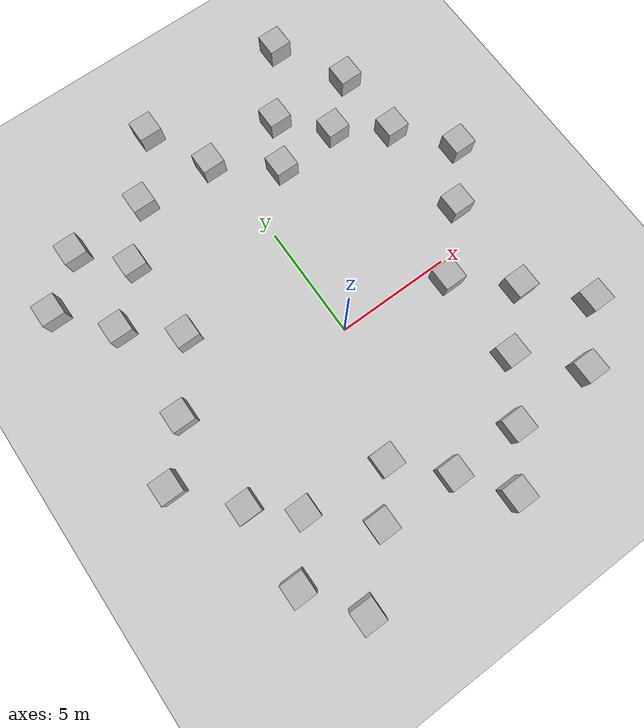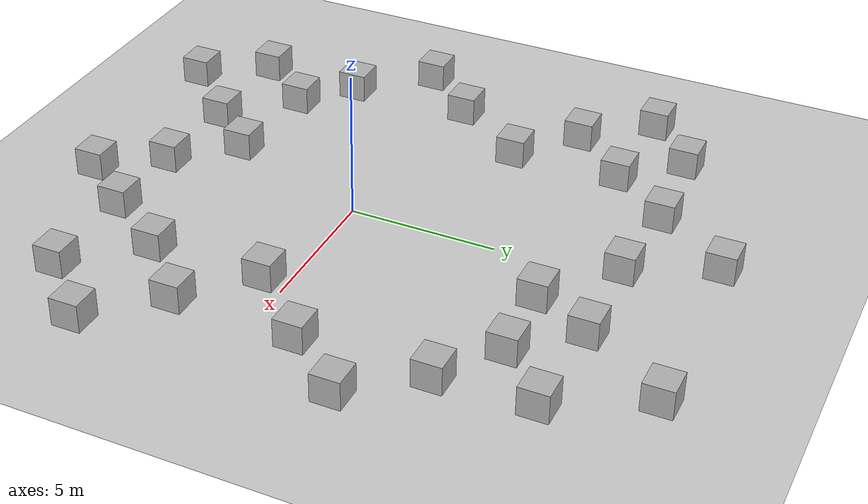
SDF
<sdf version='1.9'>
  <world name='simpel_world'>
    <physics name='1ms' type='ignored'>
      <max_step_size>0.001</max_step_size>
      <real_time_factor>1</real_time_factor>
      <real_time_update_rate>1000</real_time_update_rate>
    </physics>
    <plugin name='ignition::gazebo::systems::Physics' filename='libignition-gazebo-physics-system.so'/>
    <plugin name='ignition::gazebo::systems::UserCommands' filename='libignition-gazebo-user-commands-system.so'/>
    <plugin name='ignition::gazebo::systems::SceneBroadcaster' filename='libignition-gazebo-scene-broadcaster-system.so'/>
    <plugin name='ignition::gazebo::systems::Sensors' filename='libignition-gazebo-sensors-system.so'>
      <render_engine>ogre2</render_engine>
    </plugin>
    <gravity>0 0 -9.8</gravity>
    <magnetic_field>6e-06 2.3e-05 -4.2e-05</magnetic_field>
    <atmosphere type='adiabatic'/>
    <scene>
      <ambient>0.4 0.4 0.4 1</ambient>
      <background>0.7 0.7 0.7 1</background>
      <shadows>true</shadows>
    </scene>
    <model name='ground_plane'>
      <static>true</static>
      <link name='link'>
        <collision name='collision'>
          <geometry>
            <plane>
              <normal>0 0 1</normal>
              <size>1 1</size>
            </plane>
          </geometry>
          <surface>
            <friction>
              <ode/>
            </friction>
            <bounce/>
            <contact/>
          </surface>
        </collision>
        <visual name='visual'>
          <geometry>
            <plane>
              <normal>0 0 1</normal>
              <size>100 100</size>
            </plane>
          </geometry>
          <material>
            <ambient>0.8 0.8 0.8 1</ambient>
            <diffuse>0.8 0.8 0.8 1</diffuse>
            <specular>0.8 0.8 0.8 1</specular>
          </material>
        </visual>
        <pose>0 0 0 0 -0 0</pose>
        <inertial>
          <pose>0 0 0 0 -0 0</pose>
          <mass>1</mass>
          <inertia>
            <ixx>1</ixx>
            <ixy>0</ixy>
            <ixz>0</ixz>
            <iyy>1</iyy>
            <iyz>0</iyz>
            <izz>1</izz>
          </inertia>
        </inertial>
        <enable_wind>false</enable_wind>
      </link>
      <pose>0 0 0 0 -0 0</pose>
      <self_collide>false</self_collide>
    </model>
    <model name='box'>
      <pose>6.84875 6.00045 0.5 0 -0 0</pose>
      <link name='box_link'>
        <inertial>
          <inertia>
            <ixx>0.16666</ixx>
            <ixy>0</ixy>
            <ixz>0</ixz>
            <iyy>0.16666</iyy>
            <iyz>0</iyz>
            <izz>0.16666</izz>
          </inertia>
          <mass>1</mass>
          <pose>0 0 0 0 -0 0</pose>
        </inertial>
        <collision name='box_collision'>
          <geometry>
            <box>
              <size>1 1 1</size>
            </box>
          </geometry>
          <surface>
            <friction>
              <ode/>
            </friction>
            <bounce/>
            <contact/>
          </surface>
        </collision>
        <visual name='box_visual'>
          <geometry>
            <box>
              <size>1 1 1</size>
            </box>
          </geometry>
          <material>
            <ambient>0.3 0.3 0.3 1</ambient>
            <diffuse>0.7 0.7 0.7 1</diffuse>
            <specular>1 1 1 1</specular>
          </material>
        </visual>
        <pose>0 0 0 0 -0 0</pose>
        <enable_wind>false</enable_wind>
      </link>
      <static>false</static>
      <self_collide>false</self_collide>
    </model>
    <model name='box_0'>
      <pose>6.91688 1.58506 0.5 0 -0 0</pose>
      <link name='box_link'>
        <inertial>
          <inertia>
            <ixx>0.16666</ixx>
            <ixy>0</ixy>
            <ixz>0</ixz>
            <iyy>0.16666</iyy>
            <iyz>0</iyz>
            <izz>0.16666</izz>
          </inertia>
          <mass>1</mass>
          <pose>0 0 0 0 -0 0</pose>
        </inertial>
        <collision name='box_collision'>
          <geometry>
            <box>
              <size>1 1 1</size>
            </box>
          </geometry>
          <surface>
            <friction>
              <ode/>
            </friction>
            <bounce/>
            <contact/>
          </surface>
        </collision>
        <visual name='box_visual'>
          <geometry>
            <box>
              <size>1 1 1</size>
            </box>
          </geometry>
          <material>
            <ambient>0.3 0.3 0.3 1</ambient>
            <diffuse>0.7 0.7 0.7 1</diffuse>
            <specular>1 1 1 1</specular>
          </material>
        </visual>
        <pose>0 0 0 0 -0 0</pose>
        <enable_wind>false</enable_wind>
      </link>
      <static>false</static>
      <self_collide>false</self_collide>
    </model>
    <model name='box_1'>
      <pose>6.80581 -2.68726 0.5 0 -0 0</pose>
      <link name='box_link'>
        <inertial>
          <inertia>
            <ixx>0.16666</ixx>
            <ixy>0</ixy>
            <ixz>0</ixz>
            <iyy>0.16666</iyy>
            <iyz>0</iyz>
            <izz>0.16666</izz>
          </inertia>
          <mass>1</mass>
          <pose>0 0 0 0 -0 0</pose>
        </inertial>
        <collision name='box_collision'>
          <geometry>
            <box>
              <size>1 1 1</size>
            </box>
          </geometry>
          <surface>
            <friction>
              <ode/>
            </friction>
            <bounce/>
            <contact/>
          </surface>
        </collision>
        <visual name='box_visual'>
          <geometry>
            <box>
              <size>1 1 1</size>
            </box>
          </geometry>
          <material>
            <ambient>0.3 0.3 0.3 1</ambient>
            <diffuse>0.7 0.7 0.7 1</diffuse>
            <specular>1 1 1 1</specular>
          </material>
        </visual>
        <pose>0 0 0 0 -0 0</pose>
        <enable_wind>false</enable_wind>
      </link>
      <static>false</static>
      <self_collide>false</self_collide>
    </model>
    <model name='box_2'>
      <pose>6.80467 -6.92694 0.5 0 -0 0</pose>
      <link name='box_link'>
        <inertial>
          <inertia>
            <ixx>0.16666</ixx>
            <ixy>0</ixy>
            <ixz>0</ixz>
            <iyy>0.16666</iyy>
            <iyz>0</iyz>
            <izz>0.16666</izz>
          </inertia>
          <mass>1</mass>
          <pose>0 0 0 0 -0 0</pose>
        </inertial>
        <collision name='box_collision'>
          <geometry>
            <box>
              <size>1 1 1</size>
            </box>
          </geometry>
          <surface>
            <friction>
              <ode/>
            </friction>
            <bounce/>
            <contact/>
          </surface>
        </collision>
        <visual name='box_visual'>
          <geometry>
            <box>
              <size>1 1 1</size>
            </box>
          </geometry>
          <material>
            <ambient>0.3 0.3 0.3 1</ambient>
            <diffuse>0.7 0.7 0.7 1</diffuse>
            <specular>1 1 1 1</specular>
          </material>
        </visual>
        <pose>0 0 0 0 -0 0</pose>
        <enable_wind>false</enable_wind>
      </link>
      <static>false</static>
      <self_collide>false</self_collide>
    </model>
    <model name='box_3'>
      <pose>3.10253 -7.01485 0.5 0 -0 0</pose>
      <link name='box_link'>
        <inertial>
          <inertia>
            <ixx>0.16666</ixx>
            <ixy>0</ixy>
            <ixz>0</ixz>
            <iyy>0.16666</iyy>
            <iyz>0</iyz>
            <izz>0.16666</izz>
          </inertia>
          <mass>1</mass>
          <pose>0 0 0 0 -0 0</pose>
        </inertial>
        <collision name='box_collision'>
          <geometry>
            <box>
              <size>1 1 1</size>
            </box>
          </geometry>
          <surface>
            <friction>
              <ode/>
            </friction>
            <bounce/>
            <contact/>
          </surface>
        </collision>
        <visual name='box_visual'>
          <geometry>
            <box>
              <size>1 1 1</size>
            </box>
          </geometry>
          <material>
            <ambient>0.3 0.3 0.3 1</ambient>
            <diffuse>0.7 0.7 0.7 1</diffuse>
            <specular>1 1 1 1</specular>
          </material>
        </visual>
        <pose>0 0 0 0 -0 0</pose>
        <enable_wind>false</enable_wind>
      </link>
      <static>false</static>
      <self_collide>false</self_collide>
    </model>
    <model name='box_4'>
      <pose>-0.011968 -7.01081 0.5 0 -0 0</pose>
      <link name='box_link'>
        <inertial>
          <inertia>
            <ixx>0.16666</ixx>
            <ixy>0</ixy>
            <ixz>0</ixz>
            <iyy>0.16666</iyy>
            <iyz>0</iyz>
            <izz>0.16666</izz>
          </inertia>
          <mass>1</mass>
          <pose>0 0 0 0 -0 0</pose>
        </inertial>
        <collision name='box_collision'>
          <geometry>
            <box>
              <size>1 1 1</size>
            </box>
          </geometry>
          <surface>
            <friction>
              <ode/>
            </friction>
            <bounce/>
            <contact/>
          </surface>
        </collision>
        <visual name='box_visual'>
          <geometry>
            <box>
              <size>1 1 1</size>
            </box>
          </geometry>
          <material>
            <ambient>0.3 0.3 0.3 1</ambient>
            <diffuse>0.7 0.7 0.7 1</diffuse>
            <specular>1 1 1 1</specular>
          </material>
        </visual>
        <pose>0 0 0 0 -0 0</pose>
        <enable_wind>false</enable_wind>
      </link>
      <static>false</static>
      <self_collide>false</self_collide>
    </model>
    <model name='box_5'>
      <pose>-3.34492 -6.89747 0.5 0 -0 0</pose>
      <link name='box_link'>
        <inertial>
          <inertia>
            <ixx>0.16666</ixx>
            <ixy>0</ixy>
            <ixz>0</ixz>
            <iyy>0.16666</iyy>
            <iyz>0</iyz>
            <izz>0.16666</izz>
          </inertia>
          <mass>1</mass>
          <pose>0 0 0 0 -0 0</pose>
        </inertial>
        <collision name='box_collision'>
          <geometry>
            <box>
              <size>1 1 1</size>
            </box>
          </geometry>
          <surface>
            <friction>
              <ode/>
            </friction>
            <bounce/>
            <contact/>
          </surface>
        </collision>
        <visual name='box_visual'>
          <geometry>
            <box>
              <size>1 1 1</size>
            </box>
          </geometry>
          <material>
            <ambient>0.3 0.3 0.3 1</ambient>
            <diffuse>0.7 0.7 0.7 1</diffuse>
            <specular>1 1 1 1</specular>
          </material>
        </visual>
        <pose>0 0 0 0 -0 0</pose>
        <enable_wind>false</enable_wind>
      </link>
      <static>false</static>
      <self_collide>false</self_collide>
    </model>
    <model name='box_6'>
      <pose>-7.15741 -6.90628 0.5 0 -0 0</pose>
      <link name='box_link'>
        <inertial>
          <inertia>
            <ixx>0.16666</ixx>
            <ixy>0</ixy>
            <ixz>0</ixz>
            <iyy>0.16666</iyy>
            <iyz>0</iyz>
            <izz>0.16666</izz>
          </inertia>
          <mass>1</mass>
          <pose>0 0 0 0 -0 0</pose>
        </inertial>
        <collision name='box_collision'>
          <geometry>
            <box>
              <size>1 1 1</size>
            </box>
          </geometry>
          <surface>
            <friction>
              <ode/>
            </friction>
            <bounce/>
            <contact/>
          </surface>
        </collision>
        <visual name='box_visual'>
          <geometry>
            <box>
              <size>1 1 1</size>
            </box>
          </geometry>
          <material>
            <ambient>0.3 0.3 0.3 1</ambient>
            <diffuse>0.7 0.7 0.7 1</diffuse>
            <specular>1 1 1 1</specular>
          </material>
        </visual>
        <pose>0 0 0 0 -0 0</pose>
        <enable_wind>false</enable_wind>
      </link>
      <static>false</static>
      <self_collide>false</self_collide>
    </model>
    <model name='box_7'>
      <pose>-7.14534 -3.3841 0.5 0 -0 0</pose>
      <link name='box_link'>
        <inertial>
          <inertia>
            <ixx>0.16666</ixx>
            <ixy>0</ixy>
            <ixz>0</ixz>
            <iyy>0.16666</iyy>
            <iyz>0</iyz>
            <izz>0.16666</izz>
          </inertia>
          <mass>1</mass>
          <pose>0 0 0 0 -0 0</pose>
        </inertial>
        <collision name='box_collision'>
          <geometry>
            <box>
              <size>1 1 1</size>
            </box>
          </geometry>
          <surface>
            <friction>
              <ode/>
            </friction>
            <bounce/>
            <contact/>
          </surface>
        </collision>
        <visual name='box_visual'>
          <geometry>
            <box>
              <size>1 1 1</size>
            </box>
          </geometry>
          <material>
            <ambient>0.3 0.3 0.3 1</ambient>
            <diffuse>0.7 0.7 0.7 1</diffuse>
            <specular>1 1 1 1</specular>
          </material>
        </visual>
        <pose>0 0 0 0 -0 0</pose>
        <enable_wind>false</enable_wind>
      </link>
      <static>false</static>
      <self_collide>false</self_collide>
    </model>
    <model name='box_8'>
      <pose>-7.30717 0.876978 0.5 0 -0 0</pose>
      <link name='box_link'>
        <inertial>
          <inertia>
            <ixx>0.16666</ixx>
            <ixy>0</ixy>
            <ixz>0</ixz>
            <iyy>0.16666</iyy>
            <iyz>0</iyz>
            <izz>0.16666</izz>
          </inertia>
          <mass>1</mass>
          <pose>0 0 0 0 -0 0</pose>
        </inertial>
        <collision name='box_collision'>
          <geometry>
            <box>
              <size>1 1 1</size>
            </box>
          </geometry>
          <surface>
            <friction>
              <ode/>
            </friction>
            <bounce/>
            <contact/>
          </surface>
        </collision>
        <visual name='box_visual'>
          <geometry>
            <box>
              <size>1 1 1</size>
            </box>
          </geometry>
          <material>
            <ambient>0.3 0.3 0.3 1</ambient>
            <diffuse>0.7 0.7 0.7 1</diffuse>
            <specular>1 1 1 1</specular>
          </material>
        </visual>
        <pose>0 0 0 0 -0 0</pose>
        <enable_wind>false</enable_wind>
      </link>
      <static>false</static>
      <self_collide>false</self_collide>
    </model>
    <model name='box_9'>
      <pose>-7.42542 5.25312 0.5 0 -0 0</pose>
      <link name='box_link'>
        <inertial>
          <inertia>
            <ixx>0.16666</ixx>
            <ixy>0</ixy>
            <ixz>0</ixz>
            <iyy>0.16666</iyy>
            <iyz>0</iyz>
            <izz>0.16666</izz>
          </inertia>
          <mass>1</mass>
          <pose>0 0 0 0 -0 0</pose>
        </inertial>
        <collision name='box_collision'>
          <geometry>
            <box>
              <size>1 1 1</size>
            </box>
          </geometry>
          <surface>
            <friction>
              <ode/>
            </friction>
            <bounce/>
            <contact/>
          </surface>
        </collision>
        <visual name='box_visual'>
          <geometry>
            <box>
              <size>1 1 1</size>
            </box>
          </geometry>
          <material>
            <ambient>0.3 0.3 0.3 1</ambient>
            <diffuse>0.7 0.7 0.7 1</diffuse>
            <specular>1 1 1 1</specular>
          </material>
        </visual>
        <pose>0 0 0 0 -0 0</pose>
        <enable_wind>false</enable_wind>
      </link>
      <static>false</static>
      <self_collide>false</self_collide>
    </model>
    <model name='box_10'>
      <pose>-7.23199 9.08791 0.5 0 -0 0</pose>
      <link name='box_link'>
        <inertial>
          <inertia>
            <ixx>0.16666</ixx>
            <ixy>0</ixy>
            <ixz>0</ixz>
            <iyy>0.16666</iyy>
            <iyz>0</iyz>
            <izz>0.16666</izz>
          </inertia>
          <mass>1</mass>
          <pose>0 0 0 0 -0 0</pose>
        </inertial>
        <collision name='box_collision'>
          <geometry>
            <box>
              <size>1 1 1</size>
            </box>
          </geometry>
          <surface>
            <friction>
              <ode/>
            </friction>
            <bounce/>
            <contact/>
          </surface>
        </collision>
        <visual name='box_visual'>
          <geometry>
            <box>
              <size>1 1 1</size>
            </box>
          </geometry>
          <material>
            <ambient>0.3 0.3 0.3 1</ambient>
            <diffuse>0.7 0.7 0.7 1</diffuse>
            <specular>1 1 1 1</specular>
          </material>
        </visual>
        <pose>0 0 0 0 -0 0</pose>
        <enable_wind>false</enable_wind>
      </link>
      <static>false</static>
      <self_collide>false</self_collide>
    </model>
    <model name='box_11'>
      <pose>-3.77669 9.37251 0.5 0 -0 0</pose>
      <link name='box_link'>
        <inertial>
          <inertia>
            <ixx>0.16666</ixx>
            <ixy>0</ixy>
            <ixz>0</ixz>
            <iyy>0.16666</iyy>
            <iyz>0</iyz>
            <izz>0.16666</izz>
          </inertia>
          <mass>1</mass>
          <pose>0 0 0 0 -0 0</pose>
        </inertial>
        <collision name='box_collision'>
          <geometry>
            <box>
              <size>1 1 1</size>
            </box>
          </geometry>
          <surface>
            <friction>
              <ode/>
            </friction>
            <bounce/>
            <contact/>
          </surface>
        </collision>
        <visual name='box_visual'>
          <geometry>
            <box>
              <size>1 1 1</size>
            </box>
          </geometry>
          <material>
            <ambient>0.3 0.3 0.3 1</ambient>
            <diffuse>0.7 0.7 0.7 1</diffuse>
            <specular>1 1 1 1</specular>
          </material>
        </visual>
        <pose>0 0 0 0 -0 0</pose>
        <enable_wind>false</enable_wind>
      </link>
      <static>false</static>
      <self_collide>false</self_collide>
    </model>
    <model name='box_12'>
      <pose>-0.470923 9.17651 0.5 0 -0 0</pose>
      <link name='box_link'>
        <inertial>
          <inertia>
            <ixx>0.16666</ixx>
            <ixy>0</ixy>
            <ixz>0</ixz>
            <iyy>0.16666</iyy>
            <iyz>0</iyz>
            <izz>0.16666</izz>
          </inertia>
          <mass>1</mass>
          <pose>0 0 0 0 -0 0</pose>
        </inertial>
        <collision name='box_collision'>
          <geometry>
            <box>
              <size>1 1 1</size>
            </box>
          </geometry>
          <surface>
            <friction>
              <ode/>
            </friction>
            <bounce/>
            <contact/>
          </surface>
        </collision>
        <visual name='box_visual'>
          <geometry>
            <box>
              <size>1 1 1</size>
            </box>
          </geometry>
          <material>
            <ambient>0.3 0.3 0.3 1</ambient>
            <diffuse>0.7 0.7 0.7 1</diffuse>
            <specular>1 1 1 1</specular>
          </material>
        </visual>
        <pose>0 0 0 0 -0 0</pose>
        <enable_wind>false</enable_wind>
      </link>
      <static>false</static>
      <self_collide>false</self_collide>
    </model>
    <model name='box_13'>
      <pose>3.01344 9.2802 0.5 0 -0 0</pose>
      <link name='box_link'>
        <inertial>
          <inertia>
            <ixx>0.16666</ixx>
            <ixy>0</ixy>
            <ixz>0</ixz>
            <iyy>0.16666</iyy>
            <iyz>0</iyz>
            <izz>0.16666</izz>
          </inertia>
          <mass>1</mass>
          <pose>0 0 0 0 -0 0</pose>
        </inertial>
        <collision name='box_collision'>
          <geometry>
            <box>
              <size>1 1 1</size>
            </box>
          </geometry>
          <surface>
            <friction>
              <ode/>
            </friction>
            <bounce/>
            <contact/>
          </surface>
        </collision>
        <visual name='box_visual'>
          <geometry>
            <box>
              <size>1 1 1</size>
            </box>
          </geometry>
          <material>
            <ambient>0.3 0.3 0.3 1</ambient>
            <diffuse>0.7 0.7 0.7 1</diffuse>
            <specular>1 1 1 1</specular>
          </material>
        </visual>
        <pose>0 0 0 0 -0 0</pose>
        <enable_wind>false</enable_wind>
      </link>
      <static>false</static>
      <self_collide>false</self_collide>
    </model>
    <model name='box_14'>
      <pose>6.68779 9.16532 0.5 0 -0 0</pose>
      <link name='box_link'>
        <inertial>
          <inertia>
            <ixx>0.16666</ixx>
            <ixy>0</ixy>
            <ixz>0</ixz>
            <iyy>0.16666</iyy>
            <iyz>0</iyz>
            <izz>0.16666</izz>
          </inertia>
          <mass>1</mass>
          <pose>0 0 0 0 -0 0</pose>
        </inertial>
        <collision name='box_collision'>
          <geometry>
            <box>
              <size>1 1 1</size>
            </box>
          </geometry>
          <surface>
            <friction>
              <ode/>
            </friction>
            <bounce/>
            <contact/>
          </surface>
        </collision>
        <visual name='box_visual'>
          <geometry>
            <box>
              <size>1 1 1</size>
            </box>
          </geometry>
          <material>
            <ambient>0.3 0.3 0.3 1</ambient>
            <diffuse>0.7 0.7 0.7 1</diffuse>
            <specular>1 1 1 1</specular>
          </material>
        </visual>
        <pose>0 0 0 0 -0 0</pose>
        <enable_wind>false</enable_wind>
      </link>
      <static>false</static>
      <self_collide>false</self_collide>
    </model>
    <model name='box_15'>
      <pose>8.66865 3.71783 0.5 0 -0 0</pose>
      <link name='box_link'>
        <inertial>
          <inertia>
            <ixx>0.16666</ixx>
            <ixy>0</ixy>
            <ixz>0</ixz>
            <iyy>0.16666</iyy>
            <iyz>0</iyz>
            <izz>0.16666</izz>
          </inertia>
          <mass>1</mass>
          <pose>0 0 0 0 -0 0</pose>
        </inertial>
        <collision name='box_collision'>
          <geometry>
            <box>
              <size>1 1 1</size>
            </box>
          </geometry>
          <surface>
            <friction>
              <ode/>
            </friction>
            <bounce/>
            <contact/>
          </surface>
        </collision>
        <visual name='box_visual'>
          <geometry>
            <box>
              <size>1 1 1</size>
            </box>
          </geometry>
          <material>
            <ambient>0.3 0.3 0.3 1</ambient>
            <diffuse>0.7 0.7 0.7 1</diffuse>
            <specular>1 1 1 1</specular>
          </material>
        </visual>
        <pose>0 0 0 0 -0 0</pose>
        <enable_wind>false</enable_wind>
      </link>
      <static>false</static>
      <self_collide>false</self_collide>
    </model>
    <model name='box_16'>
      <pose>4.64194 -0.731137 0.5 0 -0 0</pose>
      <link name='box_link'>
        <inertial>
          <inertia>
            <ixx>0.16666</ixx>
            <ixy>0</ixy>
            <ixz>0</ixz>
            <iyy>0.16666</iyy>
            <iyz>0</iyz>
            <izz>0.16666</izz>
          </inertia>
          <mass>1</mass>
          <pose>0 0 0 0 -0 0</pose>
        </inertial>
        <collision name='box_collision'>
          <geometry>
            <box>
              <size>1 1 1</size>
            </box>
          </geometry>
          <surface>
            <friction>
              <ode/>
            </friction>
            <bounce/>
            <contact/>
          </surface>
        </collision>
        <visual name='box_visual'>
          <geometry>
            <box>
              <size>1 1 1</size>
            </box>
          </geometry>
          <material>
            <ambient>0.3 0.3 0.3 1</ambient>
            <diffuse>0.7 0.7 0.7 1</diffuse>
            <specular>1 1 1 1</specular>
          </material>
        </visual>
        <pose>0 0 0 0 -0 0</pose>
        <enable_wind>false</enable_wind>
      </link>
      <static>false</static>
      <self_collide>false</self_collide>
    </model>
    <model name='box_17'>
      <pose>8.87617 -4.87664 0.5 0 -0 0</pose>
      <link name='box_link'>
        <inertial>
          <inertia>
            <ixx>0.16666</ixx>
            <ixy>0</ixy>
            <ixz>0</ixz>
            <iyy>0.16666</iyy>
            <iyz>0</iyz>
            <izz>0.16666</izz>
          </inertia>
          <mass>1</mass>
          <pose>0 0 0 0 -0 0</pose>
        </inertial>
        <collision name='box_collision'>
          <geometry>
            <box>
              <size>1 1 1</size>
            </box>
          </geometry>
          <surface>
            <friction>
              <ode/>
            </friction>
            <bounce/>
            <contact/>
          </surface>
        </collision>
        <visual name='box_visual'>
          <geometry>
            <box>
              <size>1 1 1</size>
            </box>
          </geometry>
          <material>
            <ambient>0.3 0.3 0.3 1</ambient>
            <diffuse>0.7 0.7 0.7 1</diffuse>
            <specular>1 1 1 1</specular>
          </material>
        </visual>
        <pose>0 0 0 0 -0 0</pose>
        <enable_wind>false</enable_wind>
      </link>
      <static>false</static>
      <self_collide>false</self_collide>
    </model>
    <model name='box_18'>
      <pose>4.71575 -4.67272 0.5 0 -0 0</pose>
      <link name='box_link'>
        <inertial>
          <inertia>
            <ixx>0.16666</ixx>
            <ixy>0</ixy>
            <ixz>0</ixz>
            <iyy>0.16666</iyy>
            <iyz>0</iyz>
            <izz>0.16666</izz>
          </inertia>
          <mass>1</mass>
          <pose>0 0 0 0 -0 0</pose>
        </inertial>
        <collision name='box_collision'>
          <geometry>
            <box>
              <size>1 1 1</size>
            </box>
          </geometry>
          <surface>
            <friction>
              <ode/>
            </friction>
            <bounce/>
            <contact/>
          </surface>
        </collision>
        <visual name='box_visual'>
          <geometry>
            <box>
              <size>1 1 1</size>
            </box>
          </geometry>
          <material>
            <ambient>0.3 0.3 0.3 1</ambient>
            <diffuse>0.7 0.7 0.7 1</diffuse>
            <specular>1 1 1 1</specular>
          </material>
        </visual>
        <pose>0 0 0 0 -0 0</pose>
        <enable_wind>false</enable_wind>
      </link>
      <static>false</static>
      <self_collide>false</self_collide>
    </model>
    <model name='box_17_1'>
      <pose>1.4851 -8.99932 0.5 0 -0 0</pose>
      <link name='box_link'>
        <inertial>
          <inertia>
            <ixx>0.16666</ixx>
            <ixy>0</ixy>
            <ixz>0</ixz>
            <iyy>0.16666</iyy>
            <iyz>0</iyz>
            <izz>0.16666</izz>
          </inertia>
          <mass>1</mass>
        </inertial>
        <collision name='box_collision'>
          <geometry>
            <box>
              <size>1 1 1</size>
            </box>
          </geometry>
          <surface>
            <friction>
              <ode/>
            </friction>
            <bounce/>
            <contact/>
          </surface>
        </collision>
        <visual name='box_visual'>
          <geometry>
            <box>
              <size>1 1 1</size>
            </box>
          </geometry>
          <material>
            <ambient>0.3 0.3 0.3 1</ambient>
            <diffuse>0.7 0.7 0.7 1</diffuse>
            <specular>1 1 1 1</specular>
          </material>
        </visual>
      </link>
      <static>false</static>
      <self_collide>false</self_collide>
    </model>
    <model name='box_17_2'>
      <pose>-1.78945 -5.12746 0.5 0 -0 0</pose>
      <link name='box_link'>
        <inertial>
          <inertia>
            <ixx>0.16666</ixx>
            <ixy>0</ixy>
            <ixz>0</ixz>
            <iyy>0.16666</iyy>
            <iyz>0</iyz>
            <izz>0.16666</izz>
          </inertia>
          <mass>1</mass>
        </inertial>
        <collision name='box_collision'>
          <geometry>
            <box>
              <size>1 1 1</size>
            </box>
          </geometry>
          <surface>
            <friction>
              <ode/>
            </friction>
            <bounce/>
            <contact/>
          </surface>
        </collision>
        <visual name='box_visual'>
          <geometry>
            <box>
              <size>1 1 1</size>
            </box>
          </geometry>
          <material>
            <ambient>0.3 0.3 0.3 1</ambient>
            <diffuse>0.7 0.7 0.7 1</diffuse>
            <specular>1 1 1 1</specular>
          </material>
        </visual>
      </link>
      <static>false</static>
      <self_collide>false</self_collide>
    </model>
    <model name='box_17_3'>
      <pose>-5.63366 -9.10104 0.5 0 -0 0</pose>
      <link name='box_link'>
        <inertial>
          <inertia>
            <ixx>0.16666</ixx>
            <ixy>0</ixy>
            <ixz>0</ixz>
            <iyy>0.16666</iyy>
            <iyz>0</iyz>
            <izz>0.16666</izz>
          </inertia>
          <mass>1</mass>
        </inertial>
        <collision name='box_collision'>
          <geometry>
            <box>
              <size>1 1 1</size>
            </box>
          </geometry>
          <surface>
            <friction>
              <ode/>
            </friction>
            <bounce/>
            <contact/>
          </surface>
        </collision>
        <visual name='box_visual'>
          <geometry>
            <box>
              <size>1 1 1</size>
            </box>
          </geometry>
          <material>
            <ambient>0.3 0.3 0.3 1</ambient>
            <diffuse>0.7 0.7 0.7 1</diffuse>
            <specular>1 1 1 1</specular>
          </material>
        </visual>
      </link>
      <static>false</static>
      <self_collide>false</self_collide>
    </model>
    <model name='box_17_4'>
      <pose>-5.46411 -4.838 0.5 0 -0 0</pose>
      <link name='box_link'>
        <inertial>
          <inertia>
            <ixx>0.16666</ixx>
            <ixy>0</ixy>
            <ixz>0</ixz>
            <iyy>0.16666</iyy>
            <iyz>0</iyz>
            <izz>0.16666</izz>
          </inertia>
          <mass>1</mass>
        </inertial>
        <collision name='box_collision'>
          <geometry>
            <box>
              <size>1 1 1</size>
            </box>
          </geometry>
          <surface>
            <friction>
              <ode/>
            </friction>
            <bounce/>
            <contact/>
          </surface>
        </collision>
        <visual name='box_visual'>
          <geometry>
            <box>
              <size>1 1 1</size>
            </box>
          </geometry>
          <material>
            <ambient>0.3 0.3 0.3 1</ambient>
            <diffuse>0.7 0.7 0.7 1</diffuse>
            <specular>1 1 1 1</specular>
          </material>
        </visual>
      </link>
      <static>false</static>
      <self_collide>false</self_collide>
    </model>
    <model name='box_17_5'>
      <pose>-9.11581 -1.11348 0.5 0 -0 0</pose>
      <link name='box_link'>
        <inertial>
          <inertia>
            <ixx>0.16666</ixx>
            <ixy>0</ixy>
            <ixz>0</ixz>
            <iyy>0.16666</iyy>
            <iyz>0</iyz>
            <izz>0.16666</izz>
          </inertia>
          <mass>1</mass>
        </inertial>
        <collision name='box_collision'>
          <geometry>
            <box>
              <size>1 1 1</size>
            </box>
          </geometry>
          <surface>
            <friction>
              <ode/>
            </friction>
            <bounce/>
            <contact/>
          </surface>
        </collision>
        <visual name='box_visual'>
          <geometry>
            <box>
              <size>1 1 1</size>
            </box>
          </geometry>
          <material>
            <ambient>0.3 0.3 0.3 1</ambient>
            <diffuse>0.7 0.7 0.7 1</diffuse>
            <specular>1 1 1 1</specular>
          </material>
        </visual>
      </link>
      <static>false</static>
      <self_collide>false</self_collide>
    </model>
    <model name='box_17_6'>
      <pose>-5.37772 3.5407 0.5 0 -0 0</pose>
      <link name='box_link'>
        <inertial>
          <inertia>
            <ixx>0.16666</ixx>
            <ixy>0</ixy>
            <ixz>0</ixz>
            <iyy>0.16666</iyy>
            <iyz>0</iyz>
            <izz>0.16666</izz>
          </inertia>
          <mass>1</mass>
        </inertial>
        <collision name='box_collision'>
          <geometry>
            <box>
              <size>1 1 1</size>
            </box>
          </geometry>
          <surface>
            <friction>
              <ode/>
            </friction>
            <bounce/>
            <contact/>
          </surface>
        </collision>
        <visual name='box_visual'>
          <geometry>
            <box>
              <size>1 1 1</size>
            </box>
          </geometry>
          <material>
            <ambient>0.3 0.3 0.3 1</ambient>
            <diffuse>0.7 0.7 0.7 1</diffuse>
            <specular>1 1 1 1</specular>
          </material>
        </visual>
      </link>
      <static>false</static>
      <self_collide>false</self_collide>
    </model>
    <model name='box_17_7'>
      <pose>-9.24855 7.39417 0.5 0 -0 0</pose>
      <link name='box_link'>
        <inertial>
          <inertia>
            <ixx>0.16666</ixx>
            <ixy>0</ixy>
            <ixz>0</ixz>
            <iyy>0.16666</iyy>
            <iyz>0</iyz>
            <izz>0.16666</izz>
          </inertia>
          <mass>1</mass>
        </inertial>
        <collision name='box_collision'>
          <geometry>
            <box>
              <size>1 1 1</size>
            </box>
          </geometry>
          <surface>
            <friction>
              <ode/>
            </friction>
            <bounce/>
            <contact/>
          </surface>
        </collision>
        <visual name='box_visual'>
          <geometry>
            <box>
              <size>1 1 1</size>
            </box>
          </geometry>
          <material>
            <ambient>0.3 0.3 0.3 1</ambient>
            <diffuse>0.7 0.7 0.7 1</diffuse>
            <specular>1 1 1 1</specular>
          </material>
        </visual>
      </link>
      <static>false</static>
      <self_collide>false</self_collide>
    </model>
    <model name='box_17_8'>
      <pose>-5.51458 7.26012 0.5 0 -0 0</pose>
      <link name='box_link'>
        <inertial>
          <inertia>
            <ixx>0.16666</ixx>
            <ixy>0</ixy>
            <ixz>0</ixz>
            <iyy>0.16666</iyy>
            <iyz>0</iyz>
            <izz>0.16666</izz>
          </inertia>
          <mass>1</mass>
        </inertial>
        <collision name='box_collision'>
          <geometry>
            <box>
              <size>1 1 1</size>
            </box>
          </geometry>
          <surface>
            <friction>
              <ode/>
            </friction>
            <bounce/>
            <contact/>
          </surface>
        </collision>
        <visual name='box_visual'>
          <geometry>
            <box>
              <size>1 1 1</size>
            </box>
          </geometry>
          <material>
            <ambient>0.3 0.3 0.3 1</ambient>
            <diffuse>0.7 0.7 0.7 1</diffuse>
            <specular>1 1 1 1</specular>
          </material>
        </visual>
      </link>
      <static>false</static>
      <self_collide>false</self_collide>
    </model>
    <model name='box_17_9'>
      <pose>-1.8334 11.9752 0.5 0 -0 0</pose>
      <link name='box_link'>
        <inertial>
          <inertia>
            <ixx>0.16666</ixx>
            <ixy>0</ixy>
            <ixz>0</ixz>
            <iyy>0.16666</iyy>
            <iyz>0</iyz>
            <izz>0.16666</izz>
          </inertia>
          <mass>1</mass>
        </inertial>
        <collision name='box_collision'>
          <geometry>
            <box>
              <size>1 1 1</size>
            </box>
          </geometry>
          <surface>
            <friction>
              <ode/>
            </friction>
            <bounce/>
            <contact/>
          </surface>
        </collision>
        <visual name='box_visual'>
          <geometry>
            <box>
              <size>1 1 1</size>
            </box>
          </geometry>
          <material>
            <ambient>0.3 0.3 0.3 1</ambient>
            <diffuse>0.7 0.7 0.7 1</diffuse>
            <specular>1 1 1 1</specular>
          </material>
        </visual>
      </link>
      <static>false</static>
      <self_collide>false</self_collide>
    </model>
    <model name='box_17_10'>
      <pose>1.9709 7.26516 0.5 0 -0 0</pose>
      <link name='box_link'>
        <inertial>
          <inertia>
            <ixx>0.16666</ixx>
            <ixy>0</ixy>
            <ixz>0</ixz>
            <iyy>0.16666</iyy>
            <iyz>0</iyz>
            <izz>0.16666</izz>
          </inertia>
          <mass>1</mass>
        </inertial>
        <collision name='box_collision'>
          <geometry>
            <box>
              <size>1 1 1</size>
            </box>
          </geometry>
          <surface>
            <friction>
              <ode/>
            </friction>
            <bounce/>
            <contact/>
          </surface>
        </collision>
        <visual name='box_visual'>
          <geometry>
            <box>
              <size>1 1 1</size>
            </box>
          </geometry>
          <material>
            <ambient>0.3 0.3 0.3 1</ambient>
            <diffuse>0.7 0.7 0.7 1</diffuse>
            <specular>1 1 1 1</specular>
          </material>
        </visual>
      </link>
      <static>false</static>
      <self_collide>false</self_collide>
    </model>
    <model name='box_17_11'>
      <pose>5.03858 12.212 0.5 0 -0 0</pose>
      <link name='box_link'>
        <inertial>
          <inertia>
            <ixx>0.16666</ixx>
            <ixy>0</ixy>
            <ixz>0</ixz>
            <iyy>0.16666</iyy>
            <iyz>0</iyz>
            <izz>0.16666</izz>
          </inertia>
          <mass>1</mass>
        </inertial>
        <collision name='box_collision'>
          <geometry>
            <box>
              <size>1 1 1</size>
            </box>
          </geometry>
          <surface>
            <friction>
              <ode/>
            </friction>
            <bounce/>
            <contact/>
          </surface>
        </collision>
        <visual name='box_visual'>
          <geometry>
            <box>
              <size>1 1 1</size>
            </box>
          </geometry>
          <material>
            <ambient>0.3 0.3 0.3 1</ambient>
            <diffuse>0.7 0.7 0.7 1</diffuse>
            <specular>1 1 1 1</specular>
          </material>
        </visual>
      </link>
      <static>false</static>
      <self_collide>false</self_collide>
    </model>
    <model name='box_17_12'>
      <pose>4.76547 7.43126 0.5 0 -0 0</pose>
      <link name='box_link'>
        <inertial>
          <inertia>
            <ixx>0.16666</ixx>
            <ixy>0</ixy>
            <ixz>0</ixz>
            <iyy>0.16666</iyy>
            <iyz>0</iyz>
            <izz>0.16666</izz>
          </inertia>
          <mass>1</mass>
        </inertial>
        <collision name='box_collision'>
          <geometry>
            <box>
              <size>1 1 1</size>
            </box>
          </geometry>
          <surface>
            <friction>
              <ode/>
            </friction>
            <bounce/>
            <contact/>
          </surface>
        </collision>
        <visual name='box_visual'>
          <geometry>
            <box>
              <size>1 1 1</size>
            </box>
          </geometry>
          <material>
            <ambient>0.3 0.3 0.3 1</ambient>
            <diffuse>0.7 0.7 0.7 1</diffuse>
            <specular>1 1 1 1</specular>
          </material>
        </visual>
      </link>
      <static>false</static>
      <self_collide>false</self_collide>
    </model>
    <light name='sun' type='directional'>
      <pose>0 0 10 0 -0 0</pose>
      <cast_shadows>true</cast_shadows>
      <intensity>1</intensity>
      <direction>-0.5 0.1 -0.9</direction>
      <diffuse>0.8 0.8 0.8 1</diffuse>
      <specular>0.2 0.2 0.2 1</specular>
      <attenuation>
        <range>1000</range>
        <linear>0.01</linear>
        <constant>0.90000000000000002</constant>
        <quadratic>0.001</quadratic>
      </attenuation>
      <spot>
        <inner_angle>0</inner_angle>
        <outer_angle>0</outer_angle>
        <falloff>0</falloff>
      </spot>
    </light>
  </world>
</sdf>
